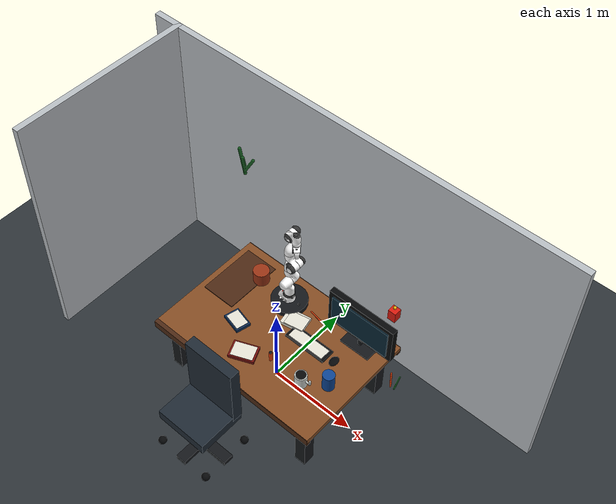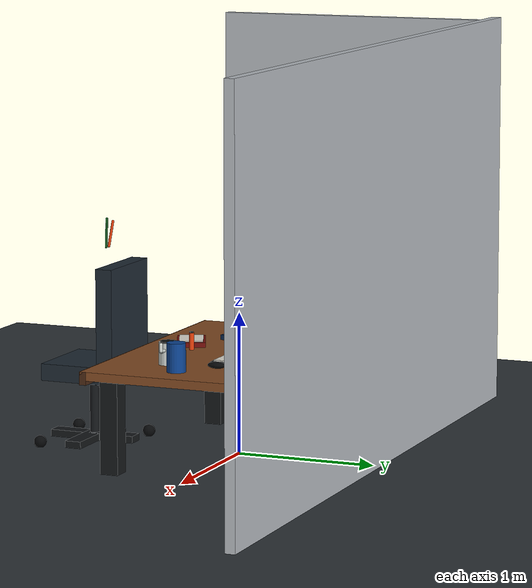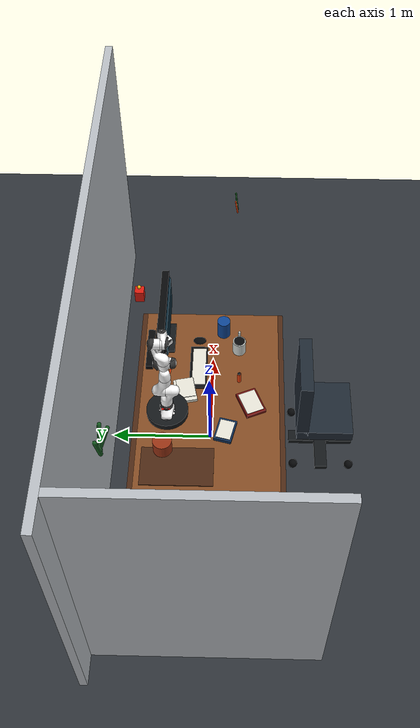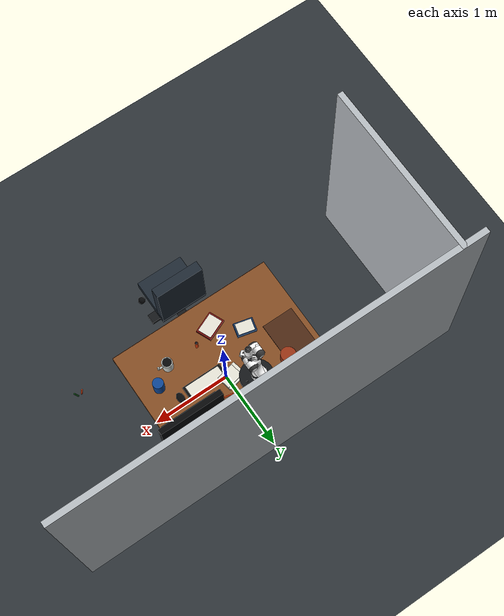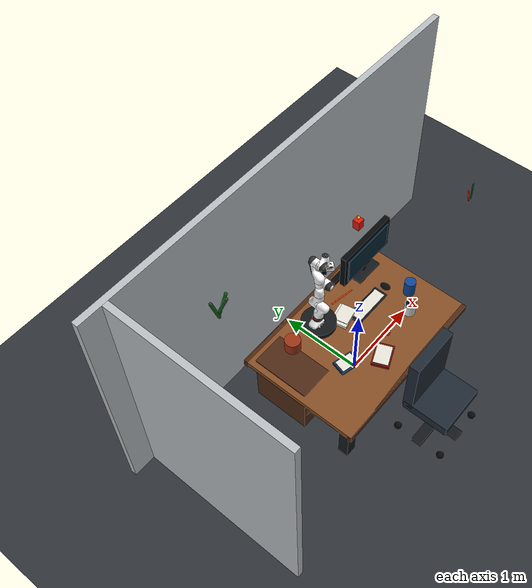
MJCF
<mujoco model="fr3">
  <compiler angle="radian" meshdir="/home/arm1/vmc_mujoco_runtime/mujoco_menagerie/franka_fr3/assets"/>

  <option integrator="implicitfast"/>

  <default>
    <default class="fr3">
      <!-- Overwritten in joints 5, 6, and 7. -->
      <joint damping="0.21" armature="0.195" frictionloss="1.137"/>
      <position inheritrange="1"/>
      <default class="visual">
        <geom type="mesh" group="2" contype="0" conaffinity="0"/>
      </default>
      <default class="collision">
        <geom type="mesh" group="3" mass="0" density="0"/>
      </default>
      <site size="0.001" rgba="0.5 0.5 0.5 0.3" group="4"/>
    </default>

    <default class="fingertip_pad_collision_1">
      <geom type="box" size="0.0085 0.004 0.0085" pos="0 0.0055 0.0445" contype="4" conaffinity="4"/>
    </default>
    <default class="fingertip_pad_collision_2">
      <geom type="box" size="0.003 0.002 0.003" pos="0.0055 0.002 0.05" contype="4" conaffinity="4"/>
    </default>
    <default class="fingertip_pad_collision_3">
      <geom type="box" size="0.003 0.002 0.003" pos="-0.0055 0.002 0.05" contype="4" conaffinity="4"/>
    </default>
    <default class="fingertip_pad_collision_4">
      <geom type="box" size="0.003 0.002 0.0035" pos="0.0055 0.002 0.0395" contype="4" conaffinity="4"/>
    </default>
    <default class="fingertip_pad_collision_5">
      <geom type="box" size="0.003 0.002 0.0035" pos="-0.0055 0.002 0.0395" contype="4" conaffinity="4"/>
    </default>
    <default class="panda_finger">
      <joint axis="0 1 0" type="slide" range="0 0.04" armature="0.1" damping="1"/>
    </default>
  </default>

  <asset>
    <material name="black" rgba=".2 .2 .2 1"/>
    <material name="white" rgba="1 1 1 1"/>
    <material name="red" rgba="1 0.072272 0.039546 1"/>
    <material name="gray" rgba="0.863156 0.863156 0.863157 1"/>
    <material name="button_green" rgba="0.102241 0.571125 0.102242 1"/>
    <material name="button_red" rgba="0.520996 0.008023 0.013702 1"/>
    <material name="button_blue" rgba="0.024157 0.445201 0.737911 1"/>

    <mesh file="link0_0.obj"/>
    <mesh file="link0_1.obj"/>
    <mesh file="link0_2.obj"/>
    <mesh file="link0_3.obj"/>
    <mesh file="link0_4.obj"/>
    <mesh file="link0_5.obj"/>
    <mesh file="link0_6.obj"/>
    <mesh file="link1.obj"/>
    <mesh file="link2.obj"/>
    <mesh file="link3_0.obj"/>
    <mesh file="link3_1.obj"/>
    <mesh file="link4_0.obj"/>
    <mesh file="link4_1.obj"/>
    <mesh file="link5_0.obj"/>
    <mesh file="link5_1.obj"/>
    <mesh file="link5_2.obj"/>
    <mesh file="link6_0.obj"/>
    <mesh file="link6_1.obj"/>
    <mesh file="link6_2.obj"/>
    <mesh file="link6_3.obj"/>
    <mesh file="link6_4.obj"/>
    <mesh file="link6_5.obj"/>
    <mesh file="link6_6.obj"/>
    <mesh file="link6_7.obj"/>
    <mesh file="link7_0.obj"/>
    <mesh file="link7_1.obj"/>
    <mesh file="link7_2.obj"/>
    <mesh file="link7_3.obj"/>

    <mesh name="link0_coll" file="link0.stl"/>
    <mesh name="link1_coll" file="link1.stl"/>
    <mesh name="link2_coll" file="link2.stl"/>
    <mesh name="link3_coll" file="link3.stl"/>
    <mesh name="link4_coll" file="link4.stl"/>
    <mesh name="link5_coll" file="link5.stl"/>
    <mesh name="link6_coll" file="link6.stl"/>
    <mesh name="link7_coll" file="link7.stl"/>

    <material name="floor_mat" rgba="0.18 0.20 0.22 1"/>
    <material name="wall_mat" rgba="0.72 0.74 0.76 1"/>
    <material name="wood_light" rgba="0.52 0.30 0.14 1"/>
    <material name="wood_edge" rgba="0.30 0.16 0.08 1"/>
    <material name="metal_dark" rgba="0.08 0.09 0.10 1"/>
    <material name="plastic_black" rgba="0.025 0.030 0.035 1"/>
    <material name="screen_glass" rgba="0.025 0.14 0.20 1"/>
    <material name="paper_white" rgba="0.90 0.89 0.84 1"/>
    <material name="book_red" rgba="0.46 0.06 0.045 1"/>
    <material name="book_blue" rgba="0.06 0.18 0.34 1"/>
    <material name="target_orange" rgba="0.90 0.25 0.045 1"/>
    <material name="mug_ceramic" rgba="0.82 0.84 0.82 1"/>
    <material name="clutter_blue" rgba="0.05 0.27 0.58 1"/>
    <material name="clutter_green" rgba="0.16 0.40 0.20 1"/>
    <material name="plant_green" rgba="0.08 0.35 0.12 1"/>
    <material name="pot_terracotta" rgba="0.60 0.20 0.08 1"/>
    <material name="chair_fabric" rgba="0.12 0.16 0.20 1"/>
    <material name="camera_housing" rgba="0.025 0.030 0.035 1"/>
    <material name="off_white" specular="0.5" shininess="0.25" rgba="0.85 0.85 0.83 1"/>
    <mesh name="hand_c" file="/home/arm1/vmc_mujoco_runtime/mujoco_menagerie/franka_emika_panda/assets/hand.stl"/>
    <mesh name="hand_0" file="/home/arm1/vmc_mujoco_runtime/mujoco_menagerie/franka_emika_panda/assets/hand_0.obj"/>
    <mesh name="hand_1" file="/home/arm1/vmc_mujoco_runtime/mujoco_menagerie/franka_emika_panda/assets/hand_1.obj"/>
    <mesh name="hand_2" file="/home/arm1/vmc_mujoco_runtime/mujoco_menagerie/franka_emika_panda/assets/hand_2.obj"/>
    <mesh name="hand_3" file="/home/arm1/vmc_mujoco_runtime/mujoco_menagerie/franka_emika_panda/assets/hand_3.obj"/>
    <mesh name="hand_4" file="/home/arm1/vmc_mujoco_runtime/mujoco_menagerie/franka_emika_panda/assets/hand_4.obj"/>
    <mesh name="finger_0" file="/home/arm1/vmc_mujoco_runtime/mujoco_menagerie/franka_emika_panda/assets/finger_0.obj"/>
    <mesh name="finger_1" file="/home/arm1/vmc_mujoco_runtime/mujoco_menagerie/franka_emika_panda/assets/finger_1.obj"/>
  </asset>

  <worldbody>
    <body name="base" childclass="fr3" pos="-0.18 0.40 0.75">
      <body name="fr3_link0">
        <geom mesh="link0_0" material="black" class="visual"/>
        <geom mesh="link0_1" material="white" class="visual"/>
        <geom mesh="link0_2" material="white" class="visual"/>
        <geom mesh="link0_3" material="white" class="visual"/>
        <geom mesh="link0_4" material="white" class="visual"/>
        <geom mesh="link0_5" material="red" class="visual"/>
        <geom mesh="link0_6" material="black" class="visual"/>
        <geom name="fr3_link0_collision" mesh="link0_coll" class="collision"/>
        <body name="fr3_link1" pos="0 0 0.333">
          <inertial pos="4.128e-07 -0.0181251 -0.0386036" quat="0.998098 -0.0605364 0.00380499 0.0110109" mass="2.92747"
            diaginertia="0.0239286 0.0227246 0.00610634"/>
          <joint name="fr3_joint1" axis="0 0 1" range="-2.7437 2.7437" actuatorfrcrange="-87 87"/>
          <geom name="fr3_link1_collision" class="collision" mesh="link1_coll"/>
          <geom material="white" mesh="link1" class="visual"/>
          <body name="fr3_link2" quat="1 -1 0 0">
            <inertial pos="0.00318289 -0.0743222 0.00881461" quat="0.502599 0.584437 -0.465998 0.434366" mass="2.93554"
              diaginertia="0.0629567 0.0411924 0.0246371"/>
            <joint name="fr3_joint2" axis="0 0 1" range="-1.7837 1.7837" actuatorfrcrange="-87 87"/>
            <geom material="white" mesh="link2" class="visual"/>
            <geom name="fr3_link2_collision" class="collision" mesh="link2_coll"/>
            <body name="fr3_link3" pos="0 -0.316 0" quat="1 1 0 0">
              <inertial pos="0.0407016 -0.00482006 -0.0289731" quat="0.921025 -0.244161 0.155272 0.260745" mass="2.2449"
                diaginertia="0.0267409 0.0189869 0.0171587"/>
              <joint name="fr3_joint3" axis="0 0 1" range="-2.9007 2.9007" actuatorfrcrange="-87 87"/>
              <geom mesh="link3_0" material="white" class="visual"/>
              <geom mesh="link3_1" material="black" class="visual"/>
              <geom name="fr3_link3_collision" class="collision" mesh="link3_coll"/>
              <body name="fr3_link4" pos="0.0825 0 0" quat="1 1 0 0">
                <inertial pos="-0.0459101 0.0630493 -0.00851879" quat="0.438018 0.803311 0.00937812 0.403414"
                  mass="2.6156" diaginertia="0.05139 0.0372717 0.0160047"/>
                <joint name="fr3_joint4" axis="0 0 1" range="-3.0421 -0.1518" actuatorfrcrange="-87 87"/>
                <geom mesh="link4_0" material="white" class="visual"/>
                <geom mesh="link4_1" material="black" class="visual"/>
                <geom name="fr3_link4_collision" class="collision" mesh="link4_coll"/>
                <body name="fr3_link5" pos="-0.0825 0.384 0" quat="1 -1 0 0">
                  <inertial pos="-0.00160396 0.0292536 -0.0972966" quat="0.919031 0.125604 0.0751531 -0.366003"
                    mass="2.32712" diaginertia="0.0579335 0.0449144 0.0130634"/>
                  <joint name="fr3_joint5" axis="0 0 1" range="-2.8065 2.8065" actuatorfrcrange="-12 12"
                    armature="0.074" frictionloss="0.763"/>
                  <geom mesh="link5_0" material="white" class="visual"/>
                  <geom mesh="link5_1" material="white" class="visual"/>
                  <geom mesh="link5_2" material="black" class="visual"/>
                  <geom name="fr3_link5_collision" class="collision" mesh="link5_coll"/>
                  <body name="fr3_link6" quat="1 1 0 0">
                    <inertial pos="0.0597131 -0.0410295 -0.0101693" quat="0.621301 0.552665 0.510011 0.220081"
                      mass="1.81704" diaginertia="0.0175039 0.0161123 0.00193529"/>
                    <joint name="fr3_joint6" axis="0 0 1" range="0.5445 4.5169" actuatorfrcrange="-12 12"
                      armature="0.074" frictionloss="0.44"/>
                    <geom mesh="link6_0" material="button_green" class="visual"/>
                    <geom mesh="link6_1" material="white" class="visual"/>
                    <geom mesh="link6_2" material="white" class="visual"/>
                    <geom mesh="link6_3" material="gray" class="visual"/>
                    <geom mesh="link6_4" material="button_red" class="visual"/>
                    <geom mesh="link6_5" material="white" class="visual"/>
                    <geom mesh="link6_6" material="black" class="visual"/>
                    <geom mesh="link6_7" material="button_blue" class="visual"/>
                    <geom name="fr3_link6_collision" class="collision" mesh="link6_coll"/>
                    <body name="fr3_link7" pos="0.088 0 0" quat="1 1 0 0">
                      <inertial pos="0.00452258 0.00862619 -0.0161633" quat="0.727579 0.0978688 -0.24906 0.63168"
                        mass="0.627143" diaginertia="0.000223836 0.000223642 5.64132e-07"/>
                      <joint name="fr3_joint7" axis="0 0 1" range="-3.0159 3.0159" actuatorfrcrange="-12 12"
                        armature="0.074" frictionloss="0.248"/>
                      <geom mesh="link7_0" material="black" class="visual"/>
                      <geom mesh="link7_1" material="white" class="visual"/>
                      <geom mesh="link7_2" material="white" class="visual"/>
                      <geom mesh="link7_3" material="black" class="visual"/>
                      <geom name="fr3_link7_collision" class="collision" mesh="link7_coll"/>
                      <site name="attachment_site" pos="0 0 0.107"/>

      <body name="fr3_hand" pos="0 0 0.107" quat="0.9238795 0 0 -0.3826834">
        <inertial mass="0.73" pos="-0.01 0 0.03" diaginertia="0.001 0.0025 0.0017"/>
        <geom mesh="hand_0" material="off_white" class="visual"/>
        <geom mesh="hand_1" material="black" class="visual"/>
        <geom mesh="hand_2" material="black" class="visual"/>
        <geom mesh="hand_3" material="white" class="visual"/>
        <geom mesh="hand_4" material="off_white" class="visual"/>
        <geom name="fr3_hand_collision" mesh="hand_c" class="collision" contype="4" conaffinity="4"/>
        <!-- Wrist RGB-D sensor: its pose is controlled by the FR3 hand pose. -->
        <geom name="wrist_camera_housing" type="box" pos="0 -0.015 0.055" size="0.040 0.022 0.030"
              material="camera_housing" contype="0" conaffinity="0"/>
        <geom name="wrist_camera_lens" type="cylinder" pos="0 -0.040 0.055" quat="0.707 0.707 0 0"
              size="0.012 0.006" material="screen_glass" contype="0" conaffinity="0"/>
        <!-- MuJoCo cameras look along local -Z. This 180-degree flip makes
             the sensor face the Panda fingers and the tabletop workspace. -->
        <camera name="wrist_rgbd" pos="0 0 0.040" quat="0 1 0 0" fovy="82"/>
        <body name="fr3_left_finger" pos="0 0 0.0584">
          <inertial mass="0.015" pos="0 0 0" diaginertia="2.375e-6 2.375e-6 7.5e-7"/>
          <joint name="fr3_finger_joint1" class="panda_finger"/>
          <geom mesh="finger_0" material="off_white" class="visual"/>
          <geom mesh="finger_1" material="black" class="visual"/>
          <geom name="fr3_left_finger_collision" mesh="finger_0" class="collision"/>
          <geom class="fingertip_pad_collision_1"/>
          <geom class="fingertip_pad_collision_2"/>
          <geom class="fingertip_pad_collision_3"/>
          <geom class="fingertip_pad_collision_4"/>
          <geom class="fingertip_pad_collision_5"/>
        </body>
        <body name="fr3_right_finger" pos="0 0 0.0584" quat="0 0 0 1">
          <inertial mass="0.015" pos="0 0 0" diaginertia="2.375e-6 2.375e-6 7.5e-7"/>
          <joint name="fr3_finger_joint2" class="panda_finger"/>
          <geom mesh="finger_0" material="off_white" class="visual"/>
          <geom mesh="finger_1" material="black" class="visual"/>
          <geom name="fr3_right_finger_collision" mesh="finger_0" class="collision"/>
          <geom class="fingertip_pad_collision_1"/>
          <geom class="fingertip_pad_collision_2"/>
          <geom class="fingertip_pad_collision_3"/>
          <geom class="fingertip_pad_collision_4"/>
          <geom class="fingertip_pad_collision_5"/>
        </body>
      </body>
</body>
                  </body>
                </body>
              </body>
            </body>
          </body>
        </body>
      </body>
    </body>

    <!-- NUS-inspired fixed-base tabletop benchmark v0 -->
    <!-- Office shell and a full-size desk. The top surface is z=0.72 m. -->
    <geom name="office_floor" type="plane" pos="0 0 0" size="4 4 0.01" material="floor_mat" contype="1" conaffinity="7"/>
    <geom name="office_back_wall" type="box" pos="0 1.02 1.45" size="2.55 0.035 1.45"
          material="wall_mat" contype="1" conaffinity="7"/>
    <geom name="office_side_wall" type="box" pos="-2.25 0 1.45" size="0.035 1.05 1.45"
          material="wall_mat" contype="1" conaffinity="7"/>
    <geom name="desk_top" type="box" pos="0 0 0.69" size="1.05 0.72 0.03"
          material="wood_light" contype="2" conaffinity="7" friction="0.8 0.08 0.01"/>
    <geom name="desk_front_edge" type="box" pos="0 -0.70 0.675" size="1.05 0.025 0.045"
          material="wood_edge" contype="2" conaffinity="7"/>
    <geom name="desk_rear_edge" type="box" pos="0 0.70 0.675" size="1.05 0.025 0.045"
          material="wood_edge" contype="2" conaffinity="7"/>
    <geom name="desk_leg_left_front" type="box" pos="-0.88 -0.56 0.34" size="0.065 0.065 0.34" material="metal_dark" contype="2" conaffinity="7"/>
    <geom name="desk_leg_right_front" type="box" pos="0.88 -0.56 0.34" size="0.065 0.065 0.34" material="metal_dark" contype="2" conaffinity="7"/>
    <geom name="desk_leg_left_rear" type="box" pos="-0.88 0.56 0.34" size="0.065 0.065 0.34" material="metal_dark" contype="2" conaffinity="7"/>
    <geom name="desk_leg_right_rear" type="box" pos="0.88 0.56 0.34" size="0.065 0.065 0.34" material="metal_dark" contype="2" conaffinity="7"/>
    <geom name="desk_rear_beam" type="box" pos="0 0.55 0.43" size="0.88 0.045 0.045" material="metal_dark" contype="2" conaffinity="7"/>

    <!-- FR3 mounting plate at the rear of the desk. -->
    <geom name="fr3_mount_plate" type="cylinder" pos="-0.18 0.40 0.75" size="0.20 0.035"
          material="metal_dark" contype="2" conaffinity="7"/>
    <geom name="fr3_mount_bolt_1" type="cylinder" pos="-0.31 0.40 0.787" size="0.012 0.006" material="plastic_black" contype="0" conaffinity="0"/>
    <geom name="fr3_mount_bolt_2" type="cylinder" pos="-0.05 0.40 0.787" size="0.012 0.006" material="plastic_black" contype="0" conaffinity="0"/>

    <!-- Left pedestal / drawers. -->
    <geom name="drawer_cabinet" type="box" pos="-0.78 0.28 0.38" size="0.20 0.34 0.35" material="wood_edge" contype="2" conaffinity="7"/>
    <geom name="drawer_1" type="box" pos="-0.78 -0.065 0.55" size="0.18 0.012 0.075" material="wood_light" contype="2" conaffinity="7"/>
    <geom name="drawer_2" type="box" pos="-0.78 -0.065 0.37" size="0.18 0.012 0.075" material="wood_light" contype="2" conaffinity="7"/>
    <geom name="drawer_handle_1" type="box" pos="-0.78 -0.083 0.55" size="0.055 0.008 0.008" material="metal_dark" contype="0" conaffinity="0"/>
    <geom name="drawer_handle_2" type="box" pos="-0.78 -0.083 0.37" size="0.055 0.008 0.008" material="metal_dark" contype="0" conaffinity="0"/>

    <!-- Monitor, stand, keyboard and mouse. -->
    <geom name="monitor_stem" type="cylinder" pos="0.72 0.47 0.89" size="0.025 0.17" material="metal_dark" contype="2" conaffinity="7"/>
    <geom name="monitor_base" type="box" pos="0.72 0.47 0.735" size="0.18 0.10 0.012" material="metal_dark" contype="2" conaffinity="7"/>
    <geom name="monitor_frame" type="box" pos="0.72 0.47 1.08" size="0.40 0.035 0.23" material="plastic_black" contype="2" conaffinity="7"/>
    <geom name="monitor_screen" type="box" pos="0.72 0.425 1.08" size="0.35 0.008 0.18" material="screen_glass" contype="0" conaffinity="0"/>
    <geom name="keyboard" type="box" pos="0.34 0.12 0.75" size="0.25 0.085 0.012" material="plastic_black" contype="2" conaffinity="7"/>
    <geom name="keyboard_surface" type="box" pos="0.34 0.115 0.765" size="0.22 0.065 0.006" material="paper_white" contype="0" conaffinity="0"/>
    <geom name="mouse" type="ellipsoid" pos="0.67 0.12 0.76" size="0.045 0.065 0.022" material="plastic_black" contype="2" conaffinity="7"/>

    <!-- Desk objects provide clutter and occlusion diversity. -->
    <body name="target_object" pos="0.18 -0.283 0.810">
      <freejoint/>
      <geom name="target_object_geom" type="cylinder" size="0.018 0.060"
            material="target_orange" mass="0.18" contype="4" conaffinity="7"
            friction="0.8 0.08 0.01"/>
      <geom name="target_object_cap" type="cylinder" pos="0 0 0.063" size="0.015 0.004" material="metal_dark" contype="0" conaffinity="0"/>
    </body>

    <body name="clutter_notebook_red" pos="-0.08 -0.40 0.755" quat="0.98 0 0 0.20">
      <geom type="box" size="0.14 0.10 0.018" material="book_red" mass="0.25" contype="4" conaffinity="7"/>
      <geom type="box" pos="0 0 0.020" size="0.12 0.085 0.004" material="paper_white" contype="0" conaffinity="0"/>
    </body>
    <body name="clutter_notebook_blue" pos="-0.40 -0.16 0.755" quat="0.99 0 0 -0.12">
      <geom type="box" size="0.12 0.085 0.018" material="book_blue" mass="0.24" contype="4" conaffinity="7"/>
      <geom type="box" pos="0 0 0.020" size="0.10 0.07 0.004" material="paper_white" contype="0" conaffinity="0"/>
    </body>
    <body name="coffee_mug" pos="0.58 -0.28 0.79">
      <geom type="cylinder" size="0.065 0.085" material="mug_ceramic" mass="0.22" contype="4" conaffinity="7"/>
      <geom type="capsule" fromto="0.052 0 0.035 0.115 0 0.035" size="0.012" material="mug_ceramic" contype="4" conaffinity="7"/>
      <geom type="capsule" fromto="0.115 0 0.035 0.115 0 0.085" size="0.012" material="mug_ceramic" contype="4" conaffinity="7"/>
      <geom type="cylinder" pos="0 0 0.086" size="0.054 0.006" material="plastic_black" contype="0" conaffinity="0"/>
    </body>
    <body name="pen_holder" pos="0.80 -0.12 0.82">
      <geom type="cylinder" size="0.065 0.10" material="clutter_blue" mass="0.20" contype="4" conaffinity="7"/>
      <geom type="capsule" fromto="0.78 -0.12 0.86 0.76 -0.10 1.02" size="0.008" material="target_orange" contype="0" conaffinity="0"/>
      <geom type="capsule" fromto="0.82 -0.12 0.86 0.85 -0.10 1.05" size="0.008" material="plant_green" contype="0" conaffinity="0"/>
    </body>
    <body name="desk_plant" pos="-0.60 0.42 0.78">
      <geom type="cylinder" size="0.09 0.10" material="pot_terracotta" mass="0.30" contype="4" conaffinity="7"/>
      <geom type="capsule" fromto="-0.60 0.42 0.84 -0.68 0.43 1.14" size="0.018" material="plant_green" contype="0" conaffinity="0"/>
      <geom type="capsule" fromto="-0.60 0.42 0.88 -0.48 0.42 1.10" size="0.018" material="plant_green" contype="0" conaffinity="0"/>
      <geom type="capsule" fromto="-0.60 0.42 0.92 -0.55 0.34 1.16" size="0.018" material="plant_green" contype="0" conaffinity="0"/>
    </body>

    <body name="loose_paper_stack" pos="0.05 0.24 0.755" quat="0.99 0 0 0.10">
      <geom type="box" size="0.13 0.10 0.018" material="paper_white" mass="0.10" contype="4" conaffinity="7"/>
      <geom type="box" pos="0.02 -0.01 0.022" size="0.11 0.085 0.004" material="paper_white" contype="0" conaffinity="0"/>
    </body>
    <geom name="pencil" type="capsule" fromto="0.10 0.43 0.765 0.38 0.38 0.765" size="0.008" material="target_orange" contype="4" conaffinity="7"/>

    <!-- Office chair in front of the desk, included for scene context. -->
    <body name="office_chair" pos="0 -1.12 0">
      <geom name="chair_seat" type="box" pos="0 0 0.53" size="0.30 0.27 0.06" material="chair_fabric" contype="2" conaffinity="7"/>
      <geom name="chair_back" type="box" pos="0 0.22 0.91" size="0.30 0.06 0.38" material="chair_fabric" contype="2" conaffinity="7"/>
      <geom name="chair_stem" type="cylinder" pos="0 0 0.28" size="0.035 0.25" material="metal_dark" contype="2" conaffinity="7"/>
      <geom name="chair_base" type="box" pos="0 0 0.04" size="0.36 0.06 0.025" material="metal_dark" contype="2" conaffinity="7"/>
      <geom name="chair_base_side" type="box" pos="0 0 0.04" size="0.06 0.32 0.025" material="metal_dark" contype="2" conaffinity="7"/>
      <geom name="chair_wheel_1" type="sphere" pos="-0.31 -0.28 0.03" size="0.045" material="plastic_black" contype="2" conaffinity="7"/>
      <geom name="chair_wheel_2" type="sphere" pos="0.31 -0.28 0.03" size="0.045" material="plastic_black" contype="2" conaffinity="7"/>
      <geom name="chair_wheel_3" type="sphere" pos="-0.31 0.28 0.03" size="0.045" material="plastic_black" contype="2" conaffinity="7"/>
      <geom name="chair_wheel_4" type="sphere" pos="0.31 0.28 0.03" size="0.045" material="plastic_black" contype="2" conaffinity="7"/>
    </body>

    <!-- A cable tray and rear power strip reinforce the office layout. -->
    <geom name="cable_tray" type="box" pos="0 0.61 0.57" size="0.72 0.10 0.035" material="plastic_black" contype="2" conaffinity="7"/>
    <geom name="power_strip" type="box" pos="0.55 0.61 0.76" size="0.23 0.035 0.025" material="plastic_black" contype="2" conaffinity="7"/>

    <!-- External observation interfaces; these are not student observations. -->
    <camera name="office_overview" pos="2.15 -2.85 1.95" mode="targetbody" target="target_object" fovy="58"/>
    <camera name="office_side" pos="2.45 1.85 1.55" mode="targetbody" target="target_object" fovy="62"/>

    <!-- Predictable dynamic obstacle: mocap body driven by dynamic_obstacle.py. -->
    <body name="dynamic_obstacle" mocap="true" pos="0.92 0.72 1.18">
      <geom name="dynamic_obstacle_geom" type="box" size="0.045 0.045 0.065"
            rgba="0.86 0.10 0.05 1" contype="8" conaffinity="7" friction="0.7 0.05 0.01"/>
      <geom name="dynamic_obstacle_marker" type="sphere" pos="0 0 0.10" size="0.018"
            rgba="1.0 0.75 0.05 1" contype="0" conaffinity="0"/>
    </body>
  </worldbody>

  <actuator>
    <motor name="fr3_joint1" joint="fr3_joint1" ctrllimited="true" ctrlrange="-87 87"/>
    <motor name="fr3_joint2" joint="fr3_joint2" ctrllimited="true" ctrlrange="-87 87"/>
    <motor name="fr3_joint3" joint="fr3_joint3" ctrllimited="true" ctrlrange="-87 87"/>
    <motor name="fr3_joint4" joint="fr3_joint4" ctrllimited="true" ctrlrange="-87 87"/>
    <motor name="fr3_joint5" joint="fr3_joint5" ctrllimited="true" ctrlrange="-12 12"/>
    <motor name="fr3_joint6" joint="fr3_joint6" ctrllimited="true" ctrlrange="-12 12"/>
    <motor name="fr3_joint7" joint="fr3_joint7" ctrllimited="true" ctrlrange="-12 12"/>
    <position name="fr3_gripper" tendon="fr3_gripper_tendon" kp="800" ctrlrange="0 0.04"/>  </actuator>

  <contact>
    <exclude body1="fr3_link0" body2="fr3_link1"/>
  </contact>

  <keyframe>
    <key name="home" qpos="0 0 0 -1.57079 0 1.57079 -0.7853" ctrl="0 0 0 -1.57079 0 1.57079 -0.7853"/>
  </keyframe>

  <tendon>
    <fixed name="fr3_gripper_tendon">
      <joint joint="fr3_finger_joint1" coef="0.5"/>
      <joint joint="fr3_finger_joint2" coef="0.5"/>
    </fixed>
  </tendon>
  <equality>
    <joint joint1="fr3_finger_joint1" joint2="fr3_finger_joint2" solimp="0.95 0.99 0.001" solref="0.005 1"/>
    <weld name="target_grasp_weld" body1="fr3_hand" body2="target_object" active="false" solimp="0.95 0.99 0.001" solref="0.005 1"/>
  </equality>
</mujoco>
